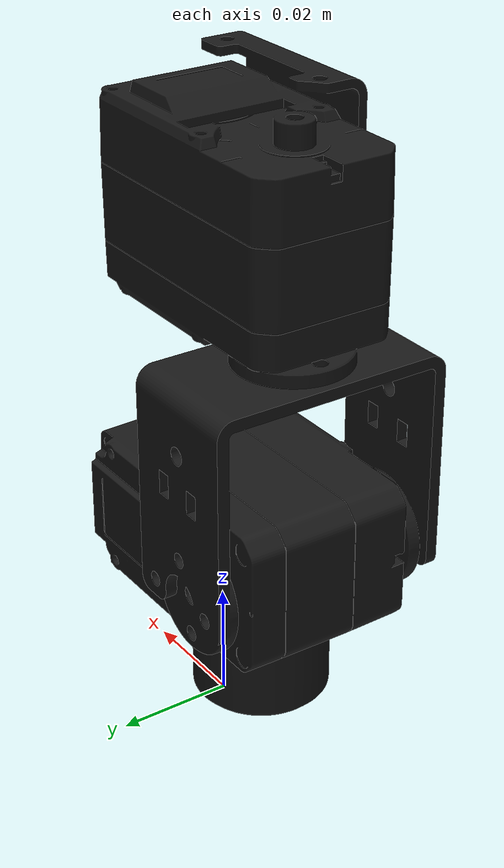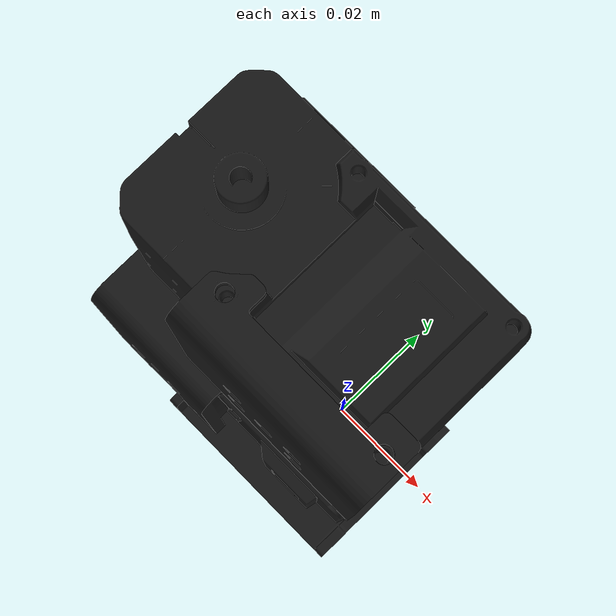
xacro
<?xml version="1.0" ?>
<robot name="pan_tilt" xmlns:xacro="http://www.ros.org/wiki/xacro">

<xacro:include filename="$(find pan_tilt_ros)/urdf/materials.xacro" />
<xacro:include filename="$(find pan_tilt_ros)/urdf/pan_tilt_urdf.trans" />
<xacro:include filename="$(find pan_tilt_ros)/urdf/pan_tilt_urdf.gazebo" />

<link name="base_link">
  <visual>
    <origin xyz="0 0 0" rpy="0 0 0"/>
    <geometry>
      <mesh filename="package://pan_tilt_ros/meshes/base_link.stl" scale="0.001 0.001 0.001"/>
    </geometry>
    <material name="matte_black"/>
  </visual>
  <collision>
    <origin xyz="0 0 0" rpy="0 0 0"/>
    <geometry>
      <mesh filename="package://pan_tilt_ros/meshes/base_link.stl" scale="0.001 0.001 0.001"/>
    </geometry>
  </collision>
</link>

<link name="base_link_inertial">
  <inertial>
    <origin xyz="3.100257446207066e-05 -2.4988496235187414e-05 0.012657202544439227" rpy="0 0 0"/>
    <mass value="0.08489188819476734"/>
    <inertia ixx="1e-05" iyy="8e-06" izz="9e-06" ixy="-0.0" iyz="-0.0" ixz="-0.0"/>
  </inertial>
</link>

<link name="tilt_motor">
  <inertial>
    <origin xyz="-0.019875146307512716 0.0162793854605978 0.010245897629134384" rpy="0 0 0"/>
    <mass value="0.04700597163076828"/>
    <inertia ixx="6e-06" iyy="1e-05" izz="1.1e-05" ixy="-0.0" iyz="-0.0" ixz="0.0"/>
  </inertial>
  <visual>
    <origin xyz="-0.01243 0.016155 -0.0275" rpy="0 0 0"/>
    <geometry>
      <mesh filename="package://pan_tilt_ros/meshes/tilt_motor.stl" scale="0.001 0.001 0.001"/>
    </geometry>
    <material name="matte_black"/>
  </visual>
  <collision>
    <origin xyz="-0.01243 0.016155 -0.0275" rpy="0 0 0"/>
    <geometry>
      <mesh filename="package://pan_tilt_ros/meshes/tilt_motor.stl" scale="0.001 0.001 0.001"/>
    </geometry>
  </collision>
</link>

<link name="pan_tilt_bracket">
  <inertial>
    <origin xyz="1.033653797971601e-09 -0.016649542795301807 0.019464379532745206" rpy="0 0 0"/>
    <mass value="0.05018543913699325"/>
    <inertia ixx="2.4e-05" iyy="1.3e-05" izz="1.5e-05" ixy="-0.0" iyz="0.0" ixz="0.0"/>
  </inertial>
  <visual>
    <origin xyz="0.02032 -0.017545 -0.03775" rpy="0 0 0"/>
    <geometry>
      <mesh filename="package://pan_tilt_ros/meshes/pan_tilt_bracket.stl" scale="0.001 0.001 0.001"/>
    </geometry>
    <material name="matte_black"/>
  </visual>
  <collision>
    <origin xyz="0.02032 -0.017545 -0.03775" rpy="0 0 0"/>
    <geometry>
      <mesh filename="package://pan_tilt_ros/meshes/pan_tilt_bracket.stl" scale="0.001 0.001 0.001"/>
    </geometry>
  </collision>
</link>

<link name="pan_motor">
  <inertial>
    <origin xyz="0.012874853692487125 -4.173783098805313e-06 0.0174208176028941" rpy="0 0 0"/>
    <mass value="0.04700597163076828"/>
    <inertia ixx="6e-06" iyy="1.1e-05" izz="1e-05" ixy="0.0" iyz="0.0" ixz="0.0"/>
  </inertial>
  <visual>
    <origin xyz="0.02032 -0.00042 -0.07405" rpy="0 0 0"/>
    <geometry>
      <mesh filename="package://pan_tilt_ros/meshes/pan_motor.stl" scale="0.001 0.001 0.001"/>
    </geometry>
    <material name="matte_black"/>
  </visual>
  <collision>
    <origin xyz="0.02032 -0.00042 -0.07405" rpy="0 0 0"/>
    <geometry>
      <mesh filename="package://pan_tilt_ros/meshes/pan_motor.stl" scale="0.001 0.001 0.001"/>
    </geometry>
  </collision>
</link>

<link name="payload_link">
  <inertial>
    <origin xyz="-0.004991360468491857 -0.011542339627033346 0.004227044433613547" rpy="0 0 0"/>
    <mass value="0.09449139072993021"/>
    <inertia ixx="2.1e-05" iyy="1.8e-05" izz="2.1e-05" ixy="-6e-06" iyz="0.0" ixz="0.0"/>
  </inertial>
  <visual>
    <origin xyz="-0.0001099 0.0164388 -0.0939786" rpy="0 0 0"/>
    <geometry>
      <mesh filename="package://pan_tilt_ros/meshes/payload_link.stl" scale="0.001 0.001 0.001"/>
    </geometry>
    <material name="matte_black"/>
  </visual>
  <collision>
    <origin xyz="-0.0001099 0.0164388 -0.0939786" rpy="0 0 0"/>
    <geometry>
      <mesh filename="package://pan_tilt_ros/meshes/payload_link.stl" scale="0.001 0.001 0.001"/>
    </geometry>
  </collision>
</link>

<joint name="base_inertial_fixed" type="fixed">
  <origin xyz="0 0 0" rpy="0 0 0"/>
  <parent link="base_link"/>
  <child link="base_link_inertial"/>
</joint>

<joint name="base_tilt_fixed" type="fixed">
  <origin xyz="0.01243 -0.016155 0.0275" rpy="0 0 0"/>
  <parent link="base_link"/>
  <child link="tilt_motor"/>
</joint>

<joint name="tilt_joint" type="continuous">
  <origin xyz="-0.03275 0.0337 0.01025" rpy="0 0 0"/>
  <parent link="tilt_motor"/>
  <child link="pan_tilt_bracket"/>
  <axis xyz="-0.0 1.0 0.0"/>
</joint>

<joint name="pan_joint" type="continuous">
  <origin xyz="0.0 -0.017125 0.0363" rpy="0 0 0"/>
  <parent link="pan_tilt_bracket"/>
  <child link="pan_motor"/>
  <axis xyz="0.0 0.0 1.0"/>
</joint>

<joint name="payload_mount_fixed" type="fixed">
  <origin xyz="0.0204299 -0.0168588 0.0199286" rpy="0 0 0"/>
  <parent link="pan_motor"/>
  <child link="payload_link"/>
</joint>

</robot>

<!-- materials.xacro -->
<robot name="pan_tilt" xmlns:xacro="http://www.ros.org/wiki/xacro" >

<material name="matte_black">
  <color rgba="0.09803921568627451 0.09803921568627451 0.09803921568627451 1.0"/>
</material>

</robot>

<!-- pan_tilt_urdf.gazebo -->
<robot name="pan_tilt" xmlns:xacro="http://www.ros.org/wiki/xacro" >

<xacro:property name="body_color" value="Gazebo/Black" />

<gazebo>
  <plugin name="control" filename="libgazebo_ros_control.so"/>
</gazebo>
<gazebo reference="base_link">
  <material>${body_color}</material>
  <mu1>0.2</mu1>
  <mu2>0.2</mu2>
  <selfCollide>true</selfCollide>
  <gravity>true</gravity>
</gazebo>

<gazebo reference="tilt_motor">
  <material>${body_color}</material>
  <mu1>0.2</mu1>
  <mu2>0.2</mu2>
  <selfCollide>true</selfCollide>
</gazebo>

<gazebo reference="pan_tilt_bracket">
  <material>${body_color}</material>
  <mu1>0.2</mu1>
  <mu2>0.2</mu2>
  <selfCollide>true</selfCollide>
</gazebo>

<gazebo reference="pan_motor">
  <material>${body_color}</material>
  <mu1>0.2</mu1>
  <mu2>0.2</mu2>
  <selfCollide>true</selfCollide>
</gazebo>

<gazebo reference="payload_link">
  <material>${body_color}</material>
  <mu1>0.2</mu1>
  <mu2>0.2</mu2>
  <selfCollide>true</selfCollide>
</gazebo>

</robot>
